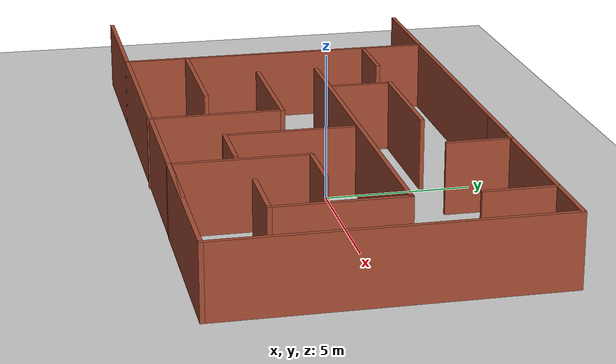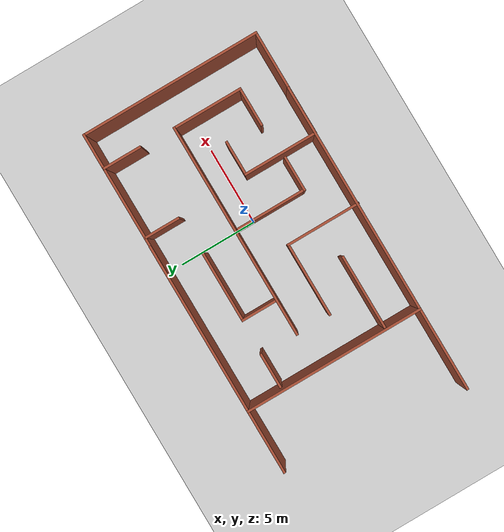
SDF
<sdf version="1.6">
 <world name="default">
  <light name="sun" type="directional">
   <pose>0 0 10 0 -0 0</pose>
   <diffuse>0.8 0.8 0.8 1</diffuse>
   <specular>0.1 0.1 0.1 1</specular>
   <attenuation>
    <range>1000</range>
    <constant>0.9</constant>
    <linear>0.01</linear>
    <quadratic>0.001</quadratic>
   </attenuation>
   <direction>-0.5 0.5 -1</direction>
  </light>
  <model name="ground_plane">
   <static>1</static>
   <link name="link">
    <collision name="collision">
     <geometry><plane><normal>0 0 1</normal><size>100 100</size></plane></geometry>
     <surface><friction><ode><mu>100</mu><mu2>50</mu2></ode></friction></surface>
    </collision>
    <visual name="visual">
     <cast_shadows>0</cast_shadows>
     <geometry><plane><normal>0 0 1</normal><size>100 100</size></plane></geometry>
     <material>
      <script><uri>file://media/materials/scripts/gazebo.material</uri><name>Gazebo/Grey</name></script>
     </material>
    </visual>
   </link>
  </model>
  <gravity>0 0 -9.8</gravity>
  <magnetic_field>6e-06 2.3e-05 -4.2e-05</magnetic_field>
  <atmosphere type="adiabatic"/>
  <physics name="default_physics" default="0" type="ode">
   <max_step_size>0.001</max_step_size>
   <real_time_factor>1</real_time_factor>
   <real_time_update_rate>1000</real_time_update_rate>
  </physics>
  <scene><ambient>0.4 0.4 0.4 1</ambient><background>0.7 0.7 0.7 1</background><shadows>1</shadows></scene>
  <spherical_coordinates>
   <surface_model>EARTH_WGS84</surface_model>
   <latitude_deg>0</latitude_deg>
   <longitude_deg>0</longitude_deg>
   <elevation>0</elevation>
   <heading_deg>0</heading_deg>
  </spherical_coordinates>
  <model name="taurob">
   <pose>-0.077683 0.057167 0 0 -0 0</pose>
   <link name="Wall_0">
    <collision name="Wall_0_Collision">
     <geometry><box><size>11.5 0.15 2.5</size></box></geometry>
     <pose>0 0 1.25 0 -0 0</pose>
    </collision>
    <visual name="Wall_0_Visual">
     <pose>0 0 1.25 0 -0 0</pose>
     <geometry><box><size>11.5 0.15 2.5</size></box></geometry>
     <material>
      <script><uri>file://media/materials/scripts/gazebo.material</uri><name>Gazebo/Bricks</name></script>
      <ambient>1 1 1 1</ambient>
     </material>
    </visual>
    <pose>-9.11696 0.022491 0 0 0 -1.5708</pose>
   </link>
   <link name="Wall_1">
    <collision name="Wall_1_Collision">
     <geometry><box><size>20.0 0.15 2.5</size></box></geometry>
     <pose>0 0 1.25 0 -0 0</pose>
    </collision>
    <visual name="Wall_1_Visual">
     <pose>0 0 1.25 0 -0 0</pose>
     <geometry><box><size>20.0 0.15 2.5</size></box></geometry>
     <material>
      <script><uri>file://media/materials/scripts/gazebo.material</uri><name>Gazebo/Bricks</name></script>
      <ambient>1 1 1 1</ambient>
     </material>
    </visual>
    <pose>-4.44196 -5.65251 0 0 -0 0</pose>
   </link>
   <link name="Wall_11">
    <collision name="Wall_11_Collision">
     <geometry><box><size>2.5 0.15 2.5</size></box></geometry>
     <pose>0 0 1.25 0 -0 0</pose>
    </collision>
    <visual name="Wall_11_Visual">
     <pose>0 0 1.25 0 -0 0</pose>
     <geometry><box><size>2.5 0.15 2.5</size></box></geometry>
     <material>
      <script><uri>file://media/materials/scripts/gazebo.material</uri><name>Gazebo/Bricks</name></script>
      <ambient>1 1 1 1</ambient>
     </material>
    </visual>
    <pose>6.90989 4.48464 0 0 0 -1.5708</pose>
   </link>
   <link name="Wall_13">
    <collision name="Wall_13_Collision">
     <geometry><box><size>2.25 0.15 2.5</size></box></geometry>
     <pose>0 0 1.25 0 -0 0</pose>
    </collision>
    <visual name="Wall_13_Visual">
     <pose>0 0 1.25 0 -0 0</pose>
     <geometry><box><size>2.25 0.15 2.5</size></box></geometry>
     <material>
      <script><uri>file://media/materials/scripts/gazebo.material</uri><name>Gazebo/Bricks</name></script>
      <ambient>1 1 1 1</ambient>
     </material>
    </visual>
    <pose>2.33003 4.56338 0 0 0 -1.5708</pose>
   </link>
   <link name="Wall_15">
    <collision name="Wall_15_Collision">
     <geometry><box><size>2.25 0.15 2.5</size></box></geometry>
     <pose>0 0 1.25 0 -0 0</pose>
    </collision>
    <visual name="Wall_15_Visual">
     <pose>0 0 1.25 0 -0 0</pose>
     <geometry><box><size>2.25 0.15 2.5</size></box></geometry>
     <material>
      <script><uri>file://media/materials/scripts/gazebo.material</uri><name>Gazebo/Bricks</name></script>
      <ambient>1 1 1 1</ambient>
     </material>
    </visual>
    <pose>-7.78717 3.41597 0 0 -0 3.14159</pose>
   </link>
   <link name="Wall_17">
    <collision name="Wall_17_Collision">
     <geometry><box><size>2.25 0.15 2.5</size></box></geometry>
     <pose>0 0 1.25 0 -0 0</pose>
    </collision>
    <visual name="Wall_17_Visual">
     <pose>0 0 1.25 0 -0 0</pose>
     <geometry><box><size>2.25 0.15 2.5</size></box></geometry>
     <material>
      <script><uri>file://media/materials/scripts/gazebo.material</uri><name>Gazebo/Bricks</name></script>
      <ambient>1 1 1 1</ambient>
     </material>
    </visual>
    <pose>1.11811 -3.47695 0 0 -0 3.14159</pose>
   </link>
   <link name="Wall_18">
    <collision name="Wall_18_Collision">
     <geometry><box><size>4.5 0.15 2.5</size></box></geometry>
     <pose>0 0 1.25 0 -0 0</pose>
    </collision>
    <visual name="Wall_18_Visual">
     <pose>0 0 1.25 0 -0 0</pose>
     <geometry><box><size>4.5 0.15 2.5</size></box></geometry>
     <material>
      <script><uri>file://media/materials/scripts/gazebo.material</uri><name>Gazebo/Bricks</name></script>
      <ambient>1 1 1 1</ambient>
     </material>
    </visual>
    <pose>0.06811 -1.30195 0 0 -0 1.5708</pose>
   </link>
   <link name="Wall_20">
    <collision name="Wall_20_Collision">
     <geometry><box><size>4.75 0.15 2.5</size></box></geometry>
     <pose>0 0 1.25 0 -0 0</pose>
    </collision>
    <visual name="Wall_20_Visual">
     <pose>0 0 1.25 0 -0 0</pose>
     <geometry><box><size>4.75 0.15 2.5</size></box></geometry>
     <material>
      <script><uri>file://media/materials/scripts/gazebo.material</uri><name>Gazebo/Bricks</name></script>
      <ambient>1 1 1 1</ambient>
     </material>
    </visual>
    <pose>-2.15731 -3.39749 0 0 -0 1.5708</pose>
   </link>
   <link name="Wall_21">
    <collision name="Wall_21_Collision">
     <geometry><box><size>4.75 0.15 2.5</size></box></geometry>
     <pose>0 0 1.25 0 -0 0</pose>
    </collision>
    <visual name="Wall_21_Visual">
     <pose>0 0 1.25 0 -0 0</pose>
     <geometry><box><size>4.75 0.15 2.5</size></box></geometry>
     <material>
      <script><uri>file://media/materials/scripts/gazebo.material</uri><name>Gazebo/Bricks</name></script>
      <ambient>1 1 1 1</ambient>
     </material>
    </visual>
    <pose>-4.45731 -1.09749 0 0 -0 3.14159</pose>
   </link>
   <link name="Wall_23">
    <collision name="Wall_23_Collision">
     <geometry><box><size>4.75 0.15 2.5</size></box></geometry>
     <pose>0 0 1.25 0 -0 0</pose>
    </collision>
    <visual name="Wall_23_Visual">
     <pose>0 0 1.25 0 -0 0</pose>
     <geometry><box><size>4.75 0.15 2.5</size></box></geometry>
     <material>
      <script><uri>file://media/materials/scripts/gazebo.material</uri><name>Gazebo/Bricks</name></script>
      <ambient>1 1 1 1</ambient>
     </material>
    </visual>
    <pose>-6.65472 -3.40756 0 0 -0 3.14159</pose>
   </link>
   <link name="Wall_25">
    <collision name="Wall_25_Collision">
     <geometry><box><size>13.75 0.15 2.5</size></box></geometry>
     <pose>0 0 1.25 0 -0 0</pose>
    </collision>
    <visual name="Wall_25_Visual">
     <pose>0 0 1.25 0 -0 0</pose>
     <geometry><box><size>13.75 0.15 2.5</size></box></geometry>
     <material>
      <script><uri>file://media/materials/scripts/gazebo.material</uri><name>Gazebo/Bricks</name></script>
      <ambient>1 1 1 1</ambient>
     </material>
    </visual>
    <pose>0.039696 1.07978 0 0 -0 0</pose>
   </link>
   <link name="Wall_26">
    <collision name="Wall_26_Collision">
     <geometry><box><size>4.5 0.15 2.5</size></box></geometry>
     <pose>0 0 1.25 0 -0 0</pose>
    </collision>
    <visual name="Wall_26_Visual">
     <pose>0 0 1.25 0 -0 0</pose>
     <geometry><box><size>4.5 0.15 2.5</size></box></geometry>
     <material>
      <script><uri>file://media/materials/scripts/gazebo.material</uri><name>Gazebo/Bricks</name></script>
      <ambient>1 1 1 1</ambient>
     </material>
    </visual>
    <pose>6.8397 -1.09522 0 0 0 -1.5708</pose>
   </link>
   <link name="Wall_27">
    <collision name="Wall_27_Collision">
     <geometry><box><size>2.5 0.15 2.5</size></box></geometry>
     <pose>0 0 1.25 0 -0 0</pose>
    </collision>
    <visual name="Wall_27_Visual">
     <pose>0 0 1.25 0 -0 0</pose>
     <geometry><box><size>2.5 0.15 2.5</size></box></geometry>
     <material>
      <script><uri>file://media/materials/scripts/gazebo.material</uri><name>Gazebo/Bricks</name></script>
      <ambient>1 1 1 1</ambient>
     </material>
    </visual>
    <pose>5.6647 -3.27022 0 0 -0 3.14159</pose>
   </link>
   <link name="Wall_29">
    <collision name="Wall_29_Collision">
     <geometry><box><size>2.25 0.15 2.5</size></box></geometry>
     <pose>0 0 1.25 0 -0 0</pose>
    </collision>
    <visual name="Wall_29_Visual">
     <pose>0 0 1.25 0 -0 0</pose>
     <geometry><box><size>2.25 0.15 2.5</size></box></geometry>
     <material>
      <script><uri>file://media/materials/scripts/gazebo.material</uri><name>Gazebo/Bricks</name></script>
      <ambient>1 1 1 1</ambient>
     </material>
    </visual>
    <pose>-4.51663 2.26856 0 0 -0 1.5708</pose>
   </link>
   <link name="Wall_3">
    <collision name="Wall_3_Collision">
     <geometry><box><size>15.0 0.15 2.5</size></box></geometry>
     <pose>0 0 1.25 0 -0 0</pose>
    </collision>
    <visual name="Wall_3_Visual">
     <pose>0 0 1.25 0 -0 0</pose>
     <geometry><box><size>15.0 0.15 2.5</size></box></geometry>
     <material>
      <script><uri>file://media/materials/scripts/gazebo.material</uri><name>Gazebo/Bricks</name></script>
      <ambient>1 1 1 1</ambient>
     </material>
    </visual>
    <pose>-5.69196 5.69749 0 0 -0 0</pose>
   </link>
   <link name="Wall_30">
    <collision name="Wall_30_Collision">
     <geometry><box><size>4.5 0.15 2.5</size></box></geometry>
     <pose>0 0 1.25 0 -0 0</pose>
    </collision>
    <visual name="Wall_30_Visual">
     <pose>0 0 1.25 0 -0 0</pose>
     <geometry><box><size>4.5 0.15 2.5</size></box></geometry>
     <material>
      <script><uri>file://media/materials/scripts/gazebo.material</uri><name>Gazebo/Bricks</name></script>
      <ambient>1 1 1 1</ambient>
     </material>
    </visual>
    <pose>-2.34164 3.31856 0 0 -0 0</pose>
   </link>
   <link name="Wall_5">
    <collision name="Wall_5_Collision">
     <geometry><box><size>9.25 0.15 2.5</size></box></geometry>
     <pose>0 0 1.25 0 -0 0</pose>
    </collision>
    <visual name="Wall_5_Visual">
     <pose>0 0 1.25 0 -0 0</pose>
     <geometry><box><size>9.25 0.15 2.5</size></box></geometry>
     <material>
      <script><uri>file://media/materials/scripts/gazebo.material</uri><name>Gazebo/Bricks</name></script>
      <ambient>1 1 1 1</ambient>
     </material>
    </visual>
    <pose>4.56696 5.68277 0 0 -0 0</pose>
   </link>
   <link name="Wall_6">
    <collision name="Wall_6_Collision">
     <geometry><box><size>11.5 0.15 2.5</size></box></geometry>
     <pose>0 0 1.25 0 -0 0</pose>
    </collision>
    <visual name="Wall_6_Visual">
     <pose>0 0 1.25 0 -0 0</pose>
     <geometry><box><size>11.5 0.15 2.5</size></box></geometry>
     <material>
      <script><uri>file://media/materials/scripts/gazebo.material</uri><name>Gazebo/Bricks</name></script>
      <ambient>1 1 1 1</ambient>
     </material>
    </visual>
    <pose>9.11696 0.007768 0 0 0 -1.5708</pose>
   </link>
   <link name="Wall_7">
    <collision name="Wall_7_Collision">
     <geometry><box><size>6.75 0.15 2.5</size></box></geometry>
     <pose>0 0 1.25 0 -0 0</pose>
    </collision>
    <visual name="Wall_7_Visual">
     <pose>0 0 1.25 0 -0 0</pose>
     <geometry><box><size>6.75 0.15 2.5</size></box></geometry>
     <material>
      <script><uri>file://media/materials/scripts/gazebo.material</uri><name>Gazebo/Bricks</name></script>
      <ambient>1 1 1 1</ambient>
     </material>
    </visual>
    <pose>5.81696 -5.66723 0 0 -0 3.14159</pose>
   </link>
   <link name="Wall_8">
    <collision name="Wall_8_Collision">
     <geometry><box><size>4.75 0.15 2.5</size></box></geometry>
     <pose>0 0 1.25 0 -0 0</pose>
    </collision>
    <visual name="Wall_8_Visual">
     <pose>0 0 1.25 0 -0 0</pose>
     <geometry><box><size>4.75 0.15 2.5</size></box></geometry>
     <material>
      <script><uri>file://media/materials/scripts/gazebo.material</uri><name>Gazebo/Bricks</name></script>
      <ambient>1 1 1 1</ambient>
     </material>
    </visual>
    <pose>2.51696 -3.36723 0 0 -0 1.5708</pose>
   </link>
   <link name="Wall_9">
    <collision name="Wall_9_Collision">
     <geometry><box><size>2.25 0.15 2.5</size></box></geometry>
     <pose>0 0 1.25 0 -0 0</pose>
    </collision>
    <visual name="Wall_9_Visual">
     <pose>0 0 1.25 0 -0 0</pose>
     <geometry><box><size>2.25 0.15 2.5</size></box></geometry>
     <material>
      <script><uri>file://media/materials/scripts/gazebo.material</uri><name>Gazebo/Bricks</name></script>
      <ambient>1 1 1 1</ambient>
     </material>
    </visual>
    <pose>3.56696 -1.06723 0 0 -0 0</pose>
   </link>
   <static>1</static>
  </model>
 </world>
</sdf>
